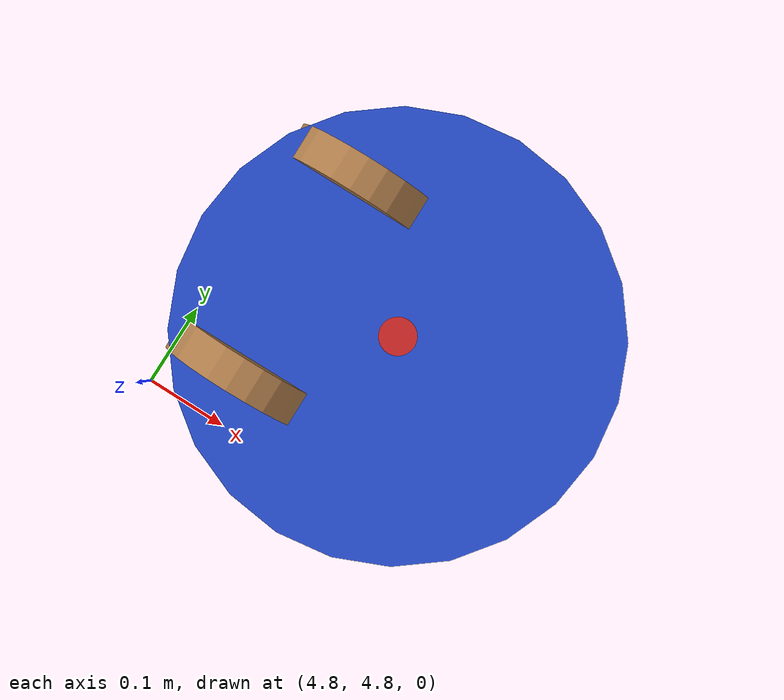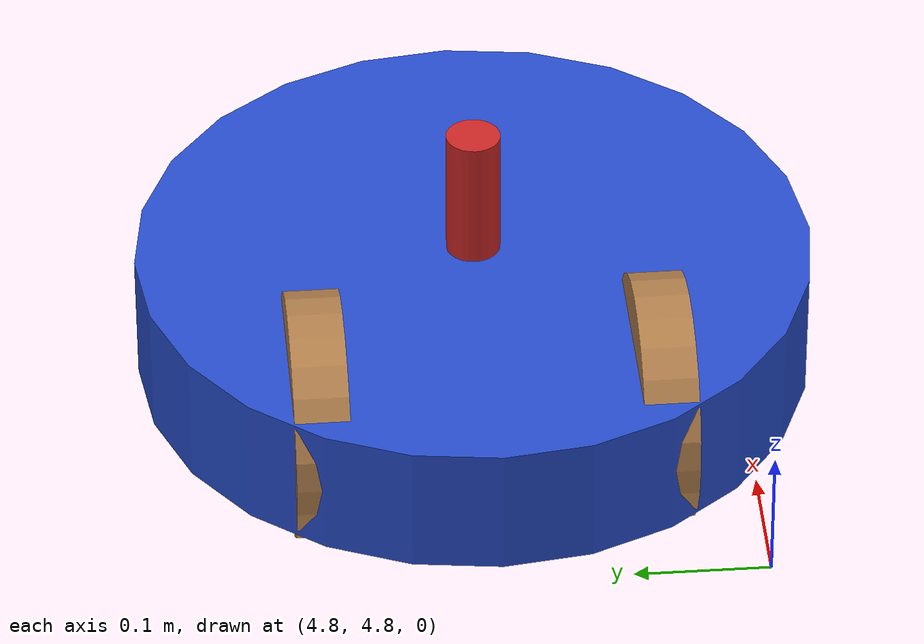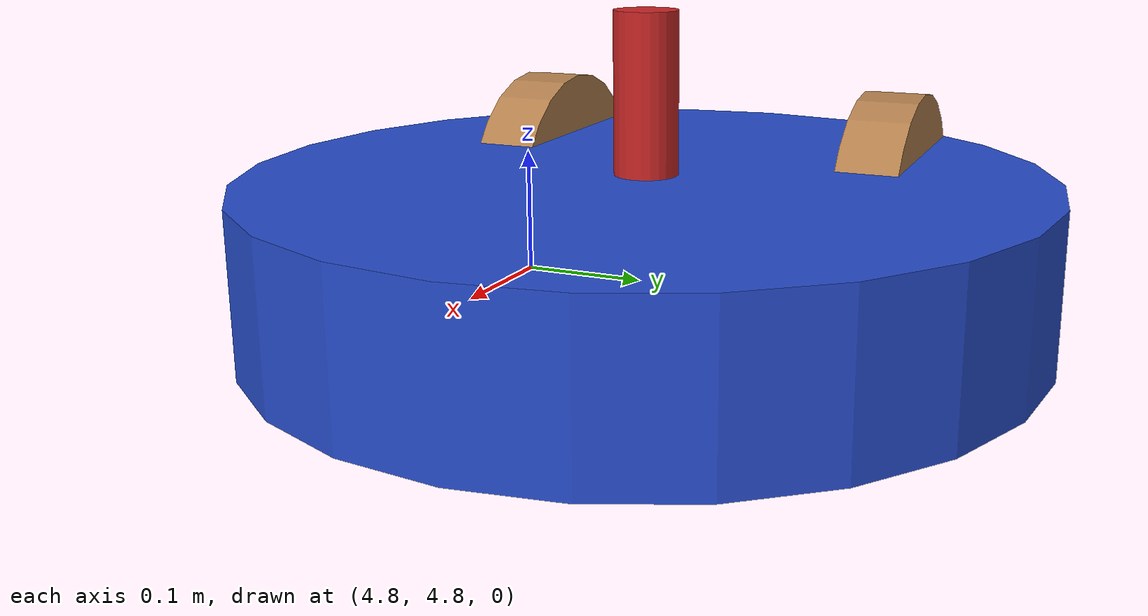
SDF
<sdf version="1.7">
 <world name="default">
  <model name="logger2">
   <link name="logger-chassis">
    <inertial>
     <pose>0.005952 0 -0.002381 0 -0 0</pose>
     <mass>2.1</mass>
     <inertia>
      <ixx>0.0332188</ixx>
      <ixy>0</ixy>
      <ixz>0.000595238</ixz>
      <iyy>0.0347069</iyy>
      <iyz>0</iyz>
      <izz>0.0640521</izz>
     </inertia>
    </inertial>
    <collision name="logger-chassis_collision">
     <geometry><cylinder><length>0.1</length><radius>0.25</radius></cylinder></geometry>
     <surface><friction><ode><mu>0.5</mu><mu2>0.5</mu2></ode></friction></surface>
    </collision>
    <collision name="logger-chassis_fixed_joint_lump__logger-caster_collision_1">
     <pose>0.125 0 -0.05 0 -0 0</pose>
     <geometry><sphere><radius>0.04</radius></sphere></geometry>
     <surface><friction><ode><mu>0</mu><mu2>0</mu2></ode></friction></surface>
    </collision>
    <visual name="logger-chassis_visual">
     <geometry><cylinder><length>0.1</length><radius>0.25</radius></cylinder></geometry>
     <material>
      <script><name>Gazebo/Blue</name><uri>file://media/materials/scripts/gazebo.material</uri></script>
     </material>
    </visual>
    <visual name="logger-chassis_fixed_joint_lump__logger-caster_visual_1">
     <pose>0.125 0 -0.05 0 -0 0</pose>
     <geometry><sphere><radius>0.04</radius></sphere></geometry>
     <material>
      <script><name>Gazebo/Grey</name><uri>file://media/materials/scripts/gazebo.material</uri></script>
     </material>
    </visual>
   </link>
   <joint name="logger-chassis2hat" type="revolute">
    <pose relative_to="logger-chassis">0 0 0.1 0 -0 0</pose>
    <parent>logger-chassis</parent>
    <child>logger-hat</child>
    <axis>
     <xyz>0 0 1</xyz>
     <limit><lower>-1e+16</lower><upper>1e+16</upper></limit>
     <dynamics><spring_reference>0</spring_reference><spring_stiffness>0</spring_stiffness></dynamics>
    </axis>
   </joint>
   <link name="logger-hat">
    <pose relative_to="logger-chassis2hat">0 0 0 0 -0 0</pose>
    <inertial>
     <pose>0 0 0.04 0 -0 0</pose>
     <mass>0.5</mass>
     <inertia>
      <ixx>0.000466667</ixx>
      <ixy>0</ixy>
      <ixz>0</ixz>
      <iyy>0.000466667</iyy>
      <iyz>0</iyz>
      <izz>0.0001</izz>
     </inertia>
    </inertial>
    <collision name="logger-hat_collision">
     <geometry><cylinder><length>0.1</length><radius>0.02</radius></cylinder></geometry>
     <surface><friction><ode><mu>0</mu><mu2>0</mu2></ode></friction></surface>
    </collision>
    <visual name="logger-hat_visual">
     <geometry><cylinder><length>0.1</length><radius>0.02</radius></cylinder></geometry>
     <material>
      <script><name>Gazebo/Red</name><uri>file://media/materials/scripts/gazebo.material</uri></script>
     </material>
    </visual>
   </link>
   <joint name="logger-chassis2left_wheel" type="revolute">
    <pose relative_to="logger-chassis">-0.125 -0.125 0 0 -0 0</pose>
    <parent>logger-chassis</parent>
    <child>logger-left_wheel</child>
    <axis>
     <xyz>0 1 0</xyz>
     <limit><lower>-1e+16</lower><upper>1e+16</upper></limit>
     <dynamics><spring_reference>0</spring_reference><spring_stiffness>0</spring_stiffness></dynamics>
    </axis>
   </joint>
   <link name="logger-left_wheel">
    <pose relative_to="logger-chassis2left_wheel">0 0 0 0 -0 0</pose>
    <inertial>
     <pose>0 0 0 1.5708 -0 0</pose>
     <mass>0.5</mass>
     <inertia>
      <ixx>0.00107917</ixx>
      <ixy>0</ixy>
      <ixz>0</ixz>
      <iyy>0.00107917</iyy>
      <iyz>0</iyz>
      <izz>0.002025</izz>
     </inertia>
    </inertial>
    <collision name="logger-left_wheel_collision">
     <pose>0 0 0 1.5708 -0 0</pose>
     <geometry><cylinder><length>0.04</length><radius>0.09</radius></cylinder></geometry>
     <surface><friction><ode><mu>0.99</mu><mu2>0.99</mu2></ode></friction></surface>
    </collision>
    <visual name="logger-left_wheel_visual">
     <pose>0 0 0 1.5708 -0 0</pose>
     <geometry><cylinder><length>0.04</length><radius>0.09</radius></cylinder></geometry>
     <material>
      <script><name>Gazebo/Wood</name><uri>file://media/materials/scripts/gazebo.material</uri></script>
     </material>
    </visual>
   </link>
   <joint name="logger-chassis2right_wheel" type="revolute">
    <pose relative_to="logger-chassis">-0.125 0.125 0 0 -0 0</pose>
    <parent>logger-chassis</parent>
    <child>logger-right_wheel</child>
    <axis>
     <xyz>0 1 0</xyz>
     <limit><lower>-1e+16</lower><upper>1e+16</upper></limit>
     <dynamics><spring_reference>0</spring_reference><spring_stiffness>0</spring_stiffness></dynamics>
    </axis>
   </joint>
   <link name="logger-right_wheel">
    <pose relative_to="logger-chassis2right_wheel">0 0 0 0 -0 0</pose>
    <inertial>
     <pose>0 0 0 1.5708 -0 0</pose>
     <mass>0.5</mass>
     <inertia>
      <ixx>0.00107917</ixx>
      <ixy>0</ixy>
      <ixz>0</ixz>
      <iyy>0.00107917</iyy>
      <iyz>0</iyz>
      <izz>0.002025</izz>
     </inertia>
    </inertial>
    <collision name="logger-right_wheel_collision">
     <pose>0 0 0 1.5708 -0 0</pose>
     <geometry><cylinder><length>0.04</length><radius>0.09</radius></cylinder></geometry>
     <surface><friction><ode><mu>0.99</mu><mu2>0.99</mu2></ode></friction></surface>
    </collision>
    <visual name="logger-right_wheel_visual">
     <pose>0 0 0 1.5708 -0 0</pose>
     <geometry><cylinder><length>0.04</length><radius>0.09</radius></cylinder></geometry>
     <material>
      <script><name>Gazebo/Wood</name><uri>file://media/materials/scripts/gazebo.material</uri></script>
     </material>
    </visual>
   </link>
   <static>0</static>
   <plugin name="differential_drive_controller" filename="libgazebo_ros_diff_drive.so">
    <legacyMode>0</legacyMode>
    <alwaysOn>1</alwaysOn>
    <updateRate>100</updateRate>
    <leftJoint>logger-chassis2left_wheel</leftJoint>
    <rightJoint>logger-chassis2right_wheel</rightJoint>
    <wheelSeparation>0.25</wheelSeparation>
    <wheelDiameter>0.18</wheelDiameter>
    <wheelTorque>1</wheelTorque>
    <commandTopic>logger2/cmd_vel</commandTopic>
    <odometryTopic>odom</odometryTopic>
    <odometryFrame>odom</odometryFrame>
    <robotBaseFrame>logger-chassis</robotBaseFrame>
    <robotNamespace>/</robotNamespace>
   </plugin>
   <pose>5.01777 5.00067 0.089998 0 1.4e-05 0.013864</pose>
  </model>
 </world>
</sdf>
